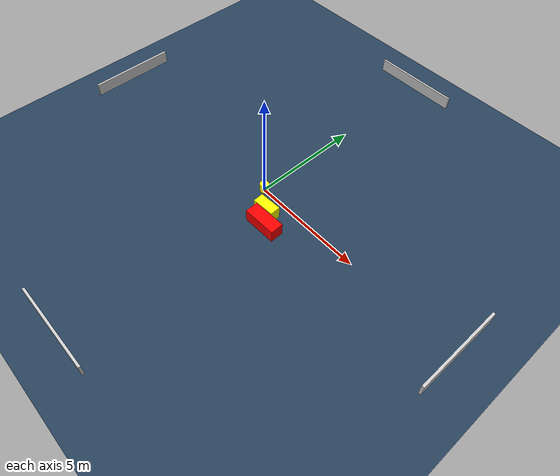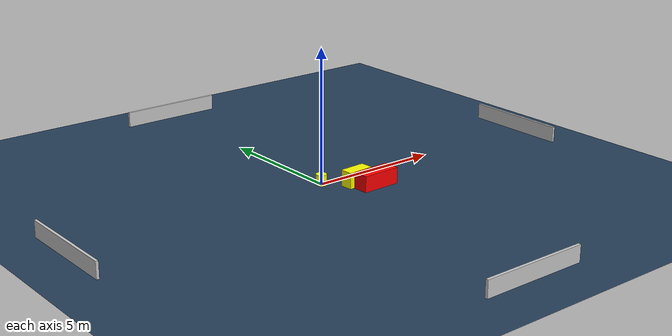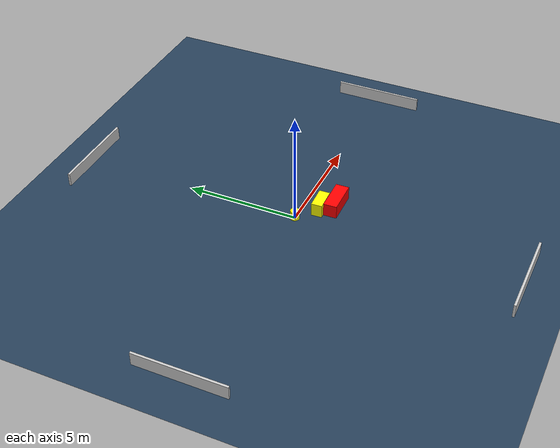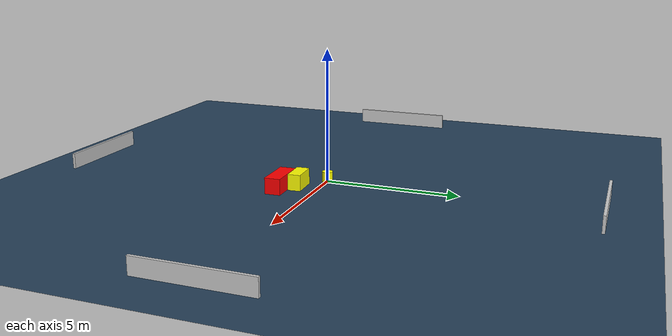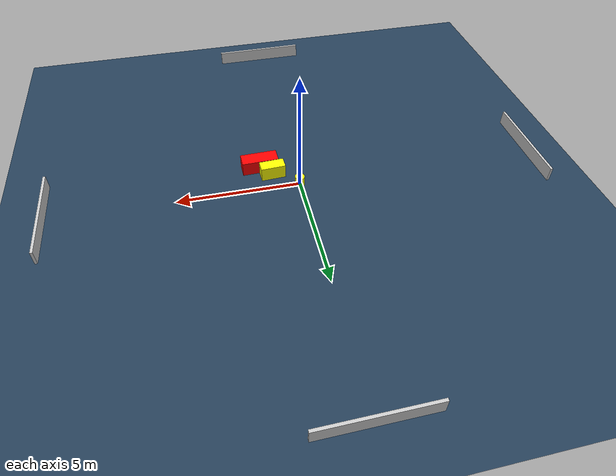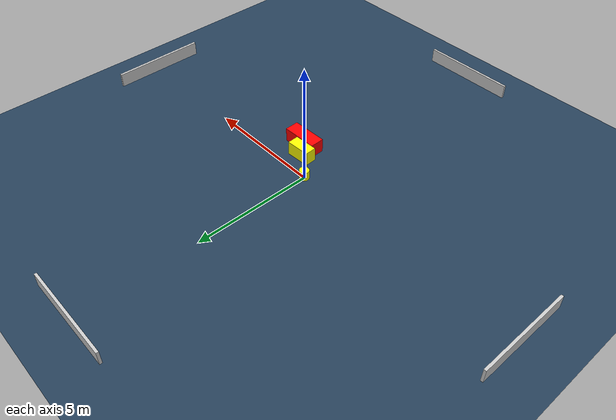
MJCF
<?xml version="1.0" ?>
<mujoco model="generated_environment">
  <option timestep="0.01" integrator="RK4" cone="elliptic"/>
  <default>
    <geom density="1"/>
  </default>
  <asset>
    <texture builtin="gradient" height="3072" name="skybox" rgb1="0.3 0.5 0.7" rgb2="0 0 0" type="skybox" width="512"/>
    <texture builtin="checker" height="300" name="groundplane" rgb1="0.2 0.3 0.4" rgb2="0.1 0.2 0.3" type="2d" width="300"/>
    <material name="groundplane" reflectance="0.2" texrepeat="5 5" texture="groundplane"/>
  </asset>
  <worldbody>
    <light dir="0 0 -1" directional="true" pos="0 0 1.5"/>
    <geom condim="3" friction="0.5 0.005 0.001" material="groundplane" name="floor" pos="0 0 0" size="0 0 0.05" type="plane"/>
    <body name="walls">
      <geom name="wall_1" condim="4" pos="-10.0 0.0 0.3" rgba="0.800000011920929 0.800000011920929 0.800000011920929 1.0" size="0.05 2.0 0.3" type="box"/>
      <geom name="wall_2" condim="4" pos="10.0 0.0 0.3" rgba="0.800000011920929 0.800000011920929 0.800000011920929 1.0" size="0.05 2.0 0.3" type="box"/>
      <geom name="wall_3" condim="4" pos="0.0 -10.0 0.3" rgba="0.800000011920929 0.800000011920929 0.800000011920929 1.0" size="2.0 0.05 0.3" type="box"/>
      <geom name="wall_4" condim="4" pos="0.0 10.0 0.3" rgba="0.800000011920929 0.800000011920929 0.800000011920929 1.0" size="2.0 0.05 0.3" type="box"/>
    </body>
    <body name="robot">
      <joint name="joint_x" type="slide" pos="0 0 0" axis="1 0 0"/>
      <joint name="joint_y" type="slide" pos="0 0 0" axis="0 1 0"/>
      <geom name="robot" type="cylinder" pos="0.0 0.0 0.2" size="0.2 0.2 0.0" mass="5.0" friction="1.0 0.005 0.0001" condim="4" rgba="1.0 1.0 0.0 1.0"/>
    </body>
    <body name="obstacle_1_movable">
      <geom name="obstacle_1_movable" condim="4" pos="0.9856952363504442 -0.7564596744289341 0.3" euler="0 0 92.81210384118309" friction="0.0 0.005 0.001" rgba="1.0 1.0 0.0 1.0" size="0.23766320456819934 0.5010956315514765 0.3" type="box" mass="0.1"/>
      <joint type="free"/>
    </body>
    <body name="obstacle_2_static">
      <geom name="obstacle_2_static" condim="4" pos="1.435916207560529 -1.294496685634174 0.3" euler="0 0 271.33347113918313" friction="0.0 0.005 0.001" rgba="1.0 0.0 0.0 1.0" size="0.2964227761100473 0.7489105156878721 0.3" type="box"/>
    </body>
  </worldbody>
  <actuator>
    <motor name="actuator_x" joint="joint_x" gear="1" ctrlrange="-1 1"/>
    <motor name="actuator_y" joint="joint_y" gear="1" ctrlrange="-1 1"/>
  </actuator>
</mujoco>
